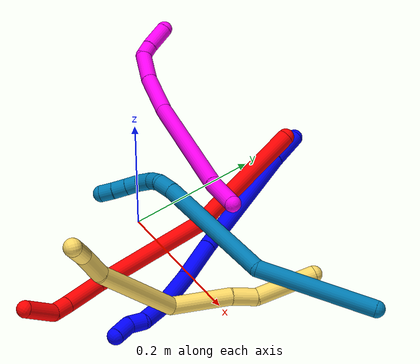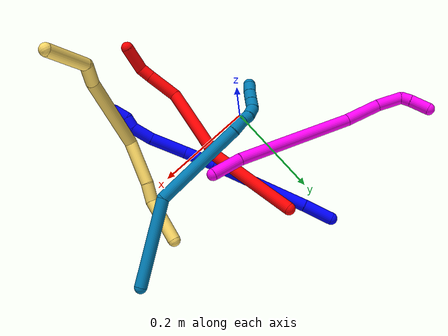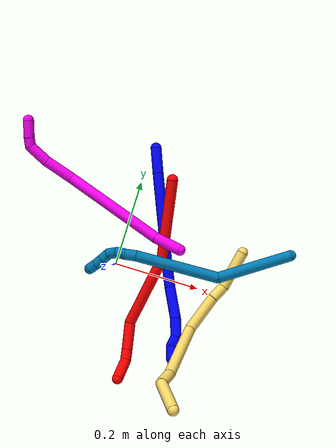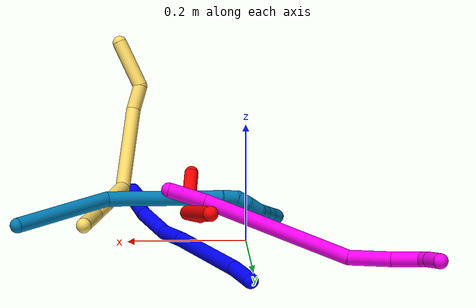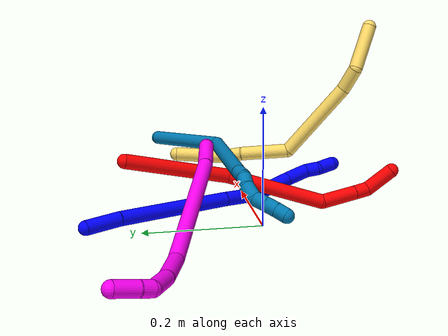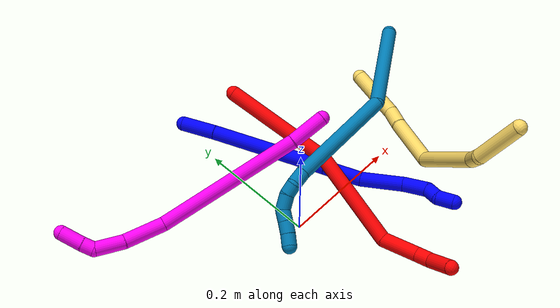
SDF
<sdf version="1.7">
 <world name="default">
  <model name="1">
   <static>0</static>
   <link name="1">
    <collision name="collision-cylinder-e_1_1_4">
     <pose>0.006133 -0.024635 0.015986 0.995188 0.205876 0.112108</pose>
     <geometry><cylinder><radius>0.0125</radius><length>0.060001</length></cylinder></geometry>
     <surface>
      <friction><ode><mu>1.16</mu><mu2>1.16</mu2><slip1>0</slip1><slip2>0</slip2></ode></friction>
      <contact><ode><kp>1e+06</kp><kd>1</kd><max_vel>0</max_vel><min_depth>0.001</min_depth></ode></contact>
     </surface>
    </collision>
    <visual name="visual-cylinder-e_1_1_4">
     <pose>0.006133 -0.024635 0.015986 0.995188 0.205876 0.112108</pose>
     <geometry><cylinder><radius>0.0125</radius><length>0.060001</length></cylinder></geometry>
     <material><ambient>0 0 1 1</ambient></material>
    </visual>
    <collision name="collision-cylinder-e_2_4_5">
     <pose>0.041256 -0.129499 0.086183 0.976568 0.290909 0.155313</pose>
     <geometry><cylinder><radius>0.0125</radius><length>0.20215</length></cylinder></geometry>
     <surface>
      <friction><ode><mu>1.16</mu><mu2>1.16</mu2><slip1>0</slip1><slip2>0</slip2></ode></friction>
      <contact><ode><kp>1e+06</kp><kd>1</kd><max_vel>0</max_vel><min_depth>0.001</min_depth></ode></contact>
     </surface>
    </collision>
    <visual name="visual-cylinder-e_2_4_5">
     <pose>0.041256 -0.129499 0.086183 0.976568 0.290909 0.155313</pose>
     <geometry><cylinder><radius>0.0125</radius><length>0.20215</length></cylinder></geometry>
     <material><ambient>0 0 1 1</ambient></material>
    </visual>
    <collision name="collision-cylinder-e_3_5_6">
     <pose>0.081015 -0.234922 0.158413 0.949907 0.334585 0.173237</pose>
     <geometry><cylinder><radius>0.0125</radius><length>0.065584</length></cylinder></geometry>
     <surface>
      <friction><ode><mu>1.16</mu><mu2>1.16</mu2><slip1>0</slip1><slip2>0</slip2></ode></friction>
      <contact><ode><kp>1e+06</kp><kd>1</kd><max_vel>0</max_vel><min_depth>0.001</min_depth></ode></contact>
     </surface>
    </collision>
    <visual name="visual-cylinder-e_3_5_6">
     <pose>0.081015 -0.234922 0.158413 0.949907 0.334585 0.173237</pose>
     <geometry><cylinder><radius>0.0125</radius><length>0.065584</length></cylinder></geometry>
     <material><ambient>0 0 1 1</ambient></material>
    </visual>
    <collision name="collision-cylinder-e_4_6_7">
     <pose>0.094633 -0.289537 0.199817 0.899228 0.075684 0.036537</pose>
     <geometry><cylinder><radius>0.0125</radius><length>0.075382</length></cylinder></geometry>
     <surface>
      <friction><ode><mu>1.16</mu><mu2>1.16</mu2><slip1>0</slip1><slip2>0</slip2></ode></friction>
      <contact><ode><kp>1e+06</kp><kd>1</kd><max_vel>0</max_vel><min_depth>0.001</min_depth></ode></contact>
     </surface>
    </collision>
    <visual name="visual-cylinder-e_4_6_7">
     <pose>0.094633 -0.289537 0.199817 0.899228 0.075684 0.036537</pose>
     <geometry><cylinder><radius>0.0125</radius><length>0.075382</length></cylinder></geometry>
     <material><ambient>0 0 1 1</ambient></material>
    </visual>
    <collision name="collision-cylinder-e_5_7_8">
     <pose>0.098168 -0.337551 0.233991 1.04496 0.031843 0.018338</pose>
     <geometry><cylinder><radius>0.0125</radius><length>0.043015</length></cylinder></geometry>
     <surface>
      <friction><ode><mu>1.16</mu><mu2>1.16</mu2><slip1>0</slip1><slip2>0</slip2></ode></friction>
      <contact><ode><kp>1e+06</kp><kd>1</kd><max_vel>0</max_vel><min_depth>0.001</min_depth></ode></contact>
     </surface>
    </collision>
    <visual name="visual-cylinder-e_5_7_8">
     <pose>0.098168 -0.337551 0.233991 1.04496 0.031843 0.018338</pose>
     <geometry><cylinder><radius>0.0125</radius><length>0.043015</length></cylinder></geometry>
     <material><ambient>0 0 1 1</ambient></material>
    </visual>
    <collision name="collision-cylinder-e_6_8_9">
     <pose>0.099388 -0.368063 0.245293 1.52793 0.04485 0.042968</pose>
     <geometry><cylinder><radius>0.0125</radius><length>0.023886</length></cylinder></geometry>
     <surface>
      <friction><ode><mu>1.16</mu><mu2>1.16</mu2><slip1>0</slip1><slip2>0</slip2></ode></friction>
      <contact><ode><kp>1e+06</kp><kd>1</kd><max_vel>0</max_vel><min_depth>0.001</min_depth></ode></contact>
     </surface>
    </collision>
    <visual name="visual-cylinder-e_6_8_9">
     <pose>0.099388 -0.368063 0.245293 1.52793 0.04485 0.042968</pose>
     <geometry><cylinder><radius>0.0125</radius><length>0.023886</length></cylinder></geometry>
     <material><ambient>0 0 1 1</ambient></material>
    </visual>
    <collision name="collision-cylinder-e_7_9_2">
     <pose>0.10153 -0.392963 0.253132 1.05685 0.107335 0.062702</pose>
     <geometry><cylinder><radius>0.0125</radius><length>0.029982</length></cylinder></geometry>
     <surface>
      <friction><ode><mu>1.16</mu><mu2>1.16</mu2><slip1>0</slip1><slip2>0</slip2></ode></friction>
      <contact><ode><kp>1e+06</kp><kd>1</kd><max_vel>0</max_vel><min_depth>0.001</min_depth></ode></contact>
     </surface>
    </collision>
    <visual name="visual-cylinder-e_7_9_2">
     <pose>0.10153 -0.392963 0.253132 1.05685 0.107335 0.062702</pose>
     <geometry><cylinder><radius>0.0125</radius><length>0.029982</length></cylinder></geometry>
     <material><ambient>0 0 1 1</ambient></material>
    </visual>
    <collision name="collision-sphere-2">
     <pose>0.103136 -0.405942 0.260459 0 -0 0</pose>
     <geometry><sphere><radius>0.0125</radius></sphere></geometry>
     <surface>
      <friction><ode><mu>1.16</mu><mu2>1.16</mu2><slip1>0</slip1><slip2>0</slip2></ode></friction>
      <contact><ode><kp>1e+06</kp><kd>1</kd><max_vel>0</max_vel><min_depth>0.001</min_depth></ode></contact>
     </surface>
    </collision>
    <visual name="visual-sphere-2">
     <pose>0.103136 -0.405942 0.260459 0 -0 0</pose>
     <geometry><sphere><radius>0.0125</radius></sphere></geometry>
     <material><ambient>0 0 1 1</ambient></material>
    </visual>
    <collision name="collision-sphere-9">
     <pose>0.099924 -0.379983 0.245804 0 -0 0</pose>
     <geometry><sphere><radius>0.0125</radius></sphere></geometry>
     <surface>
      <friction><ode><mu>1.16</mu><mu2>1.16</mu2><slip1>0</slip1><slip2>0</slip2></ode></friction>
      <contact><ode><kp>1e+06</kp><kd>1</kd><max_vel>0</max_vel><min_depth>0.001</min_depth></ode></contact>
     </surface>
    </collision>
    <visual name="visual-sphere-9">
     <pose>0.099924 -0.379983 0.245804 0 -0 0</pose>
     <geometry><sphere><radius>0.0125</radius></sphere></geometry>
     <material><ambient>0 0 1 1</ambient></material>
    </visual>
    <collision name="collision-sphere-4">
     <pose>0.012266 -0.049269 0.031971 0 -0 0</pose>
     <geometry><sphere><radius>0.0125</radius></sphere></geometry>
     <surface>
      <friction><ode><mu>1.16</mu><mu2>1.16</mu2><slip1>0</slip1><slip2>0</slip2></ode></friction>
      <contact><ode><kp>1e+06</kp><kd>1</kd><max_vel>0</max_vel><min_depth>0.001</min_depth></ode></contact>
     </surface>
    </collision>
    <visual name="visual-sphere-4">
     <pose>0.012266 -0.049269 0.031971 0 -0 0</pose>
     <geometry><sphere><radius>0.0125</radius></sphere></geometry>
     <material><ambient>0 0 1 1</ambient></material>
    </visual>
    <collision name="collision-sphere-1">
     <geometry><sphere><radius>0.0125</radius></sphere></geometry>
     <surface>
      <friction><ode><mu>1.16</mu><mu2>1.16</mu2><slip1>0</slip1><slip2>0</slip2></ode></friction>
      <contact><ode><kp>1e+06</kp><kd>1</kd><max_vel>0</max_vel><min_depth>0.001</min_depth></ode></contact>
     </surface>
    </collision>
    <visual name="visual-sphere-1">
     <geometry><sphere><radius>0.0125</radius></sphere></geometry>
     <material><ambient>0 0 1 1</ambient></material>
    </visual>
    <collision name="collision-sphere-8">
     <pose>0.098853 -0.356144 0.244781 0 -0 0</pose>
     <geometry><sphere><radius>0.0125</radius></sphere></geometry>
     <surface>
      <friction><ode><mu>1.16</mu><mu2>1.16</mu2><slip1>0</slip1><slip2>0</slip2></ode></friction>
      <contact><ode><kp>1e+06</kp><kd>1</kd><max_vel>0</max_vel><min_depth>0.001</min_depth></ode></contact>
     </surface>
    </collision>
    <visual name="visual-sphere-8">
     <pose>0.098853 -0.356144 0.244781 0 -0 0</pose>
     <geometry><sphere><radius>0.0125</radius></sphere></geometry>
     <material><ambient>0 0 1 1</ambient></material>
    </visual>
    <collision name="collision-sphere-5">
     <pose>0.070247 -0.209729 0.140394 0 -0 0</pose>
     <geometry><sphere><radius>0.0125</radius></sphere></geometry>
     <surface>
      <friction><ode><mu>1.16</mu><mu2>1.16</mu2><slip1>0</slip1><slip2>0</slip2></ode></friction>
      <contact><ode><kp>1e+06</kp><kd>1</kd><max_vel>0</max_vel><min_depth>0.001</min_depth></ode></contact>
     </surface>
    </collision>
    <visual name="visual-sphere-5">
     <pose>0.070247 -0.209729 0.140394 0 -0 0</pose>
     <geometry><sphere><radius>0.0125</radius></sphere></geometry>
     <material><ambient>0 0 1 1</ambient></material>
    </visual>
    <collision name="collision-sphere-6">
     <pose>0.091783 -0.260115 0.176432 0 -0 0</pose>
     <geometry><sphere><radius>0.0125</radius></sphere></geometry>
     <surface>
      <friction><ode><mu>1.16</mu><mu2>1.16</mu2><slip1>0</slip1><slip2>0</slip2></ode></friction>
      <contact><ode><kp>1e+06</kp><kd>1</kd><max_vel>0</max_vel><min_depth>0.001</min_depth></ode></contact>
     </surface>
    </collision>
    <visual name="visual-sphere-6">
     <pose>0.091783 -0.260115 0.176432 0 -0 0</pose>
     <geometry><sphere><radius>0.0125</radius></sphere></geometry>
     <material><ambient>0 0 1 1</ambient></material>
    </visual>
    <collision name="collision-sphere-7">
     <pose>0.097483 -0.318958 0.223201 0 -0 0</pose>
     <geometry><sphere><radius>0.0125</radius></sphere></geometry>
     <surface>
      <friction><ode><mu>1.16</mu><mu2>1.16</mu2><slip1>0</slip1><slip2>0</slip2></ode></friction>
      <contact><ode><kp>1e+06</kp><kd>1</kd><max_vel>0</max_vel><min_depth>0.001</min_depth></ode></contact>
     </surface>
    </collision>
    <visual name="visual-sphere-7">
     <pose>0.097483 -0.318958 0.223201 0 -0 0</pose>
     <geometry><sphere><radius>0.0125</radius></sphere></geometry>
     <material><ambient>0 0 1 1</ambient></material>
    </visual>
    <inertial>
     <pose>0.061591 -0.199965 0.134693 0 -0 0</pose>
     <mass>0.5</mass>
     <inertia>
      <ixx>0.000875</ixx>
      <ixy>0</ixy>
      <ixz>0</ixz>
      <iyy>0.000548</iyy>
      <iyz>0</iyz>
      <izz>0.000436</izz>
     </inertia>
    </inertial>
   </link>
   <pose>0.00945 0.287372 0.011674 -0.946722 1.28713 -1.14363</pose>
  </model>
  <model name="2">
   <static>0</static>
   <link name="2">
    <collision name="collision-cylinder-e_1_1_4">
     <pose>-0.000107 -0.020913 -0.090584 2.9147 -0.001153 -0.010115</pose>
     <geometry><cylinder><radius>0.0125</radius><length>0.185933</length></cylinder></geometry>
     <surface>
      <friction><ode><mu>1.16</mu><mu2>1.16</mu2><slip1>0</slip1><slip2>0</slip2></ode></friction>
      <contact><ode><kp>1e+06</kp><kd>1</kd><max_vel>0</max_vel><min_depth>0.001</min_depth></ode></contact>
     </surface>
    </collision>
    <visual name="visual-cylinder-e_1_1_4">
     <pose>-0.000107 -0.020913 -0.090584 2.9147 -0.001153 -0.010115</pose>
     <geometry><cylinder><radius>0.0125</radius><length>0.185933</length></cylinder></geometry>
     <material><ambient>1 0 0 1</ambient></material>
    </visual>
    <collision name="collision-cylinder-e_2_4_5">
     <pose>-0.023205 -0.075346 -0.256469 2.72279 -0.272009 -1.14422</pose>
     <geometry><cylinder><radius>0.0125</radius><length>0.171144</length></cylinder></geometry>
     <surface>
      <friction><ode><mu>1.16</mu><mu2>1.16</mu2><slip1>0</slip1><slip2>0</slip2></ode></friction>
      <contact><ode><kp>1e+06</kp><kd>1</kd><max_vel>0</max_vel><min_depth>0.001</min_depth></ode></contact>
     </surface>
    </collision>
    <visual name="visual-cylinder-e_2_4_5">
     <pose>-0.023205 -0.075346 -0.256469 2.72279 -0.272009 -1.14422</pose>
     <geometry><cylinder><radius>0.0125</radius><length>0.171144</length></cylinder></geometry>
     <material><ambient>1 0 0 1</ambient></material>
    </visual>
    <collision name="collision-cylinder-e_3_5_6">
     <pose>-0.037327 -0.123117 -0.358846 2.65709 0.28213 1.0432</pose>
     <geometry><cylinder><radius>0.0125</radius><length>0.06371</length></cylinder></geometry>
     <surface>
      <friction><ode><mu>1.16</mu><mu2>1.16</mu2><slip1>0</slip1><slip2>0</slip2></ode></friction>
      <contact><ode><kp>1e+06</kp><kd>1</kd><max_vel>0</max_vel><min_depth>0.001</min_depth></ode></contact>
     </surface>
    </collision>
    <visual name="visual-cylinder-e_3_5_6">
     <pose>-0.037327 -0.123117 -0.358846 2.65709 0.28213 1.0432</pose>
     <geometry><cylinder><radius>0.0125</radius><length>0.06371</length></cylinder></geometry>
     <material><ambient>1 0 0 1</ambient></material>
    </visual>
    <collision name="collision-cylinder-e_4_6_7">
     <pose>-0.024915 -0.143494 -0.396625 2.62174 0.279724 0.973734</pose>
     <geometry><cylinder><radius>0.0125</radius><length>0.025666</length></cylinder></geometry>
     <surface>
      <friction><ode><mu>1.16</mu><mu2>1.16</mu2><slip1>0</slip1><slip2>0</slip2></ode></friction>
      <contact><ode><kp>1e+06</kp><kd>1</kd><max_vel>0</max_vel><min_depth>0.001</min_depth></ode></contact>
     </surface>
    </collision>
    <visual name="visual-cylinder-e_4_6_7">
     <pose>-0.024915 -0.143494 -0.396625 2.62174 0.279724 0.973734</pose>
     <geometry><cylinder><radius>0.0125</radius><length>0.025666</length></cylinder></geometry>
     <material><ambient>1 0 0 1</ambient></material>
    </visual>
    <collision name="collision-cylinder-e_5_7_2">
     <pose>-0.010989 -0.171705 -0.418345 2.03346 0.398249 0.63056</pose>
     <geometry><cylinder><radius>0.0125</radius><length>0.053547</length></cylinder></geometry>
     <surface>
      <friction><ode><mu>1.16</mu><mu2>1.16</mu2><slip1>0</slip1><slip2>0</slip2></ode></friction>
      <contact><ode><kp>1e+06</kp><kd>1</kd><max_vel>0</max_vel><min_depth>0.001</min_depth></ode></contact>
     </surface>
    </collision>
    <visual name="visual-cylinder-e_5_7_2">
     <pose>-0.010989 -0.171705 -0.418345 2.03346 0.398249 0.63056</pose>
     <geometry><cylinder><radius>0.0125</radius><length>0.053547</length></cylinder></geometry>
     <material><ambient>1 0 0 1</ambient></material>
    </visual>
    <collision name="collision-sphere-2">
     <pose>-0.000606 -0.193789 -0.429359 0 -0 0</pose>
     <geometry><sphere><radius>0.0125</radius></sphere></geometry>
     <surface>
      <friction><ode><mu>1.16</mu><mu2>1.16</mu2><slip1>0</slip1><slip2>0</slip2></ode></friction>
      <contact><ode><kp>1e+06</kp><kd>1</kd><max_vel>0</max_vel><min_depth>0.001</min_depth></ode></contact>
     </surface>
    </collision>
    <visual name="visual-sphere-2">
     <pose>-0.000606 -0.193789 -0.429359 0 -0 0</pose>
     <geometry><sphere><radius>0.0125</radius></sphere></geometry>
     <material><ambient>1 0 0 1</ambient></material>
    </visual>
    <collision name="collision-sphere-7">
     <pose>-0.021372 -0.149621 -0.40733 0 -0 0</pose>
     <geometry><sphere><radius>0.0125</radius></sphere></geometry>
     <surface>
      <friction><ode><mu>1.16</mu><mu2>1.16</mu2><slip1>0</slip1><slip2>0</slip2></ode></friction>
      <contact><ode><kp>1e+06</kp><kd>1</kd><max_vel>0</max_vel><min_depth>0.001</min_depth></ode></contact>
     </surface>
    </collision>
    <visual name="visual-sphere-7">
     <pose>-0.021372 -0.149621 -0.40733 0 -0 0</pose>
     <geometry><sphere><radius>0.0125</radius></sphere></geometry>
     <material><ambient>1 0 0 1</ambient></material>
    </visual>
    <collision name="collision-sphere-6">
     <pose>-0.028458 -0.137367 -0.38592 0 -0 0</pose>
     <geometry><sphere><radius>0.0125</radius></sphere></geometry>
     <surface>
      <friction><ode><mu>1.16</mu><mu2>1.16</mu2><slip1>0</slip1><slip2>0</slip2></ode></friction>
      <contact><ode><kp>1e+06</kp><kd>1</kd><max_vel>0</max_vel><min_depth>0.001</min_depth></ode></contact>
     </surface>
    </collision>
    <visual name="visual-sphere-6">
     <pose>-0.028458 -0.137367 -0.38592 0 -0 0</pose>
     <geometry><sphere><radius>0.0125</radius></sphere></geometry>
     <material><ambient>1 0 0 1</ambient></material>
    </visual>
    <collision name="collision-sphere-5">
     <pose>-0.046195 -0.108866 -0.331772 0 -0 0</pose>
     <geometry><sphere><radius>0.0125</radius></sphere></geometry>
     <surface>
      <friction><ode><mu>1.16</mu><mu2>1.16</mu2><slip1>0</slip1><slip2>0</slip2></ode></friction>
      <contact><ode><kp>1e+06</kp><kd>1</kd><max_vel>0</max_vel><min_depth>0.001</min_depth></ode></contact>
     </surface>
    </collision>
    <visual name="visual-sphere-5">
     <pose>-0.046195 -0.108866 -0.331772 0 -0 0</pose>
     <geometry><sphere><radius>0.0125</radius></sphere></geometry>
     <material><ambient>1 0 0 1</ambient></material>
    </visual>
    <collision name="collision-sphere-1">
     <geometry><sphere><radius>0.0125</radius></sphere></geometry>
     <surface>
      <friction><ode><mu>1.16</mu><mu2>1.16</mu2><slip1>0</slip1><slip2>0</slip2></ode></friction>
      <contact><ode><kp>1e+06</kp><kd>1</kd><max_vel>0</max_vel><min_depth>0.001</min_depth></ode></contact>
     </surface>
    </collision>
    <visual name="visual-sphere-1">
     <geometry><sphere><radius>0.0125</radius></sphere></geometry>
     <material><ambient>1 0 0 1</ambient></material>
    </visual>
    <collision name="collision-sphere-4">
     <pose>-0.000214 -0.041827 -0.181167 0 -0 0</pose>
     <geometry><sphere><radius>0.0125</radius></sphere></geometry>
     <surface>
      <friction><ode><mu>1.16</mu><mu2>1.16</mu2><slip1>0</slip1><slip2>0</slip2></ode></friction>
      <contact><ode><kp>1e+06</kp><kd>1</kd><max_vel>0</max_vel><min_depth>0.001</min_depth></ode></contact>
     </surface>
    </collision>
    <visual name="visual-sphere-4">
     <pose>-0.000214 -0.041827 -0.181167 0 -0 0</pose>
     <geometry><sphere><radius>0.0125</radius></sphere></geometry>
     <material><ambient>1 0 0 1</ambient></material>
    </visual>
    <inertial>
     <pose>-0.015194 -0.075009 -0.232357 0 -0 0</pose>
     <mass>0.5</mass>
     <inertia>
      <ixx>0.000388</ixx>
      <ixy>0</ixy>
      <ixz>0</ixz>
      <iyy>-0.001021</iyy>
      <iyz>0</iyz>
      <izz>0.000381</izz>
     </inertia>
    </inertial>
   </link>
   <pose>0.069031 0.219676 0.103029 -1.01887 -0.761992 -0.056826</pose>
  </model>
  <model name="5">
   <static>0</static>
   <link name="5">
    <collision name="collision-cylinder-e_1_1_4">
     <pose>0.001496 0.006853 -0.04429 -2.98809 0.033372 -0.427365</pose>
     <geometry><cylinder><radius>0.0125</radius><length>0.089683</length></cylinder></geometry>
     <surface>
      <friction><ode><mu>1.16</mu><mu2>1.16</mu2><slip1>0</slip1><slip2>0</slip2></ode></friction>
      <contact><ode><kp>1e+06</kp><kd>1</kd><max_vel>0</max_vel><min_depth>0.001</min_depth></ode></contact>
     </surface>
    </collision>
    <visual name="visual-cylinder-e_1_1_4">
     <pose>0.001496 0.006853 -0.04429 -2.98809 0.033372 -0.427365</pose>
     <geometry><cylinder><radius>0.0125</radius><length>0.089683</length></cylinder></geometry>
     <material><ambient>1 0.858824 0.4 1</ambient></material>
    </visual>
    <collision name="collision-cylinder-e_2_4_5">
     <pose>-0.001739 0.011832 -0.106187 3.03563 -0.261107 -2.37391</pose>
     <geometry><cylinder><radius>0.0125</radius><length>0.036656</length></cylinder></geometry>
     <surface>
      <friction><ode><mu>1.16</mu><mu2>1.16</mu2><slip1>0</slip1><slip2>0</slip2></ode></friction>
      <contact><ode><kp>1e+06</kp><kd>1</kd><max_vel>0</max_vel><min_depth>0.001</min_depth></ode></contact>
     </surface>
    </collision>
    <visual name="visual-cylinder-e_2_4_5">
     <pose>-0.001739 0.011832 -0.106187 3.03563 -0.261107 -2.37391</pose>
     <geometry><cylinder><radius>0.0125</radius><length>0.036656</length></cylinder></geometry>
     <material><ambient>1 0.858824 0.4 1</ambient></material>
    </visual>
    <collision name="collision-cylinder-e_3_5_6">
     <pose>-0.011776 0.010199 -0.167255 -3.13608 -0.121477 3.05097</pose>
     <geometry><cylinder><radius>0.0125</radius><length>0.087568</length></cylinder></geometry>
     <surface>
      <friction><ode><mu>1.16</mu><mu2>1.16</mu2><slip1>0</slip1><slip2>0</slip2></ode></friction>
      <contact><ode><kp>1e+06</kp><kd>1</kd><max_vel>0</max_vel><min_depth>0.001</min_depth></ode></contact>
     </surface>
    </collision>
    <visual name="visual-cylinder-e_3_5_6">
     <pose>-0.011776 0.010199 -0.167255 -3.13608 -0.121477 3.05097</pose>
     <geometry><cylinder><radius>0.0125</radius><length>0.087568</length></cylinder></geometry>
     <material><ambient>1 0.858824 0.4 1</ambient></material>
    </visual>
    <collision name="collision-cylinder-e_4_6_7">
     <pose>-0.020255 -0.042124 -0.26682 2.38878 -0.04125 -0.104284</pose>
     <geometry><cylinder><radius>0.0125</radius><length>0.153892</length></cylinder></geometry>
     <surface>
      <friction><ode><mu>1.16</mu><mu2>1.16</mu2><slip1>0</slip1><slip2>0</slip2></ode></friction>
      <contact><ode><kp>1e+06</kp><kd>1</kd><max_vel>0</max_vel><min_depth>0.001</min_depth></ode></contact>
     </surface>
    </collision>
    <visual name="visual-cylinder-e_4_6_7">
     <pose>-0.020255 -0.042124 -0.26682 2.38878 -0.04125 -0.104284</pose>
     <geometry><cylinder><radius>0.0125</radius><length>0.153892</length></cylinder></geometry>
     <material><ambient>1 0.858824 0.4 1</ambient></material>
    </visual>
    <collision name="collision-cylinder-e_5_7_8">
     <pose>-0.029014 -0.112536 -0.335272 2.17593 -0.251937 -0.474077</pose>
     <geometry><cylinder><radius>0.0125</radius><length>0.044821</length></cylinder></geometry>
     <surface>
      <friction><ode><mu>1.16</mu><mu2>1.16</mu2><slip1>0</slip1><slip2>0</slip2></ode></friction>
      <contact><ode><kp>1e+06</kp><kd>1</kd><max_vel>0</max_vel><min_depth>0.001</min_depth></ode></contact>
     </surface>
    </collision>
    <visual name="visual-cylinder-e_5_7_8">
     <pose>-0.029014 -0.112536 -0.335272 2.17593 -0.251937 -0.474077</pose>
     <geometry><cylinder><radius>0.0125</radius><length>0.044821</length></cylinder></geometry>
     <material><ambient>1 0.858824 0.4 1</ambient></material>
    </visual>
    <collision name="collision-cylinder-e_6_8_2">
     <pose>-0.016301 -0.166251 -0.364574 2.01242 0.43219 0.667288</pose>
     <geometry><cylinder><radius>0.0125</radius><length>0.08738</length></cylinder></geometry>
     <surface>
      <friction><ode><mu>1.16</mu><mu2>1.16</mu2><slip1>0</slip1><slip2>0</slip2></ode></friction>
      <contact><ode><kp>1e+06</kp><kd>1</kd><max_vel>0</max_vel><min_depth>0.001</min_depth></ode></contact>
     </surface>
    </collision>
    <visual name="visual-cylinder-e_6_8_2">
     <pose>-0.016301 -0.166251 -0.364574 2.01242 0.43219 0.667288</pose>
     <geometry><cylinder><radius>0.0125</radius><length>0.08738</length></cylinder></geometry>
     <material><ambient>1 0.858824 0.4 1</ambient></material>
    </visual>
    <collision name="collision-sphere-2">
     <pose>0.001999 -0.202118 -0.381531 0 -0 0</pose>
     <geometry><sphere><radius>0.0125</radius></sphere></geometry>
     <surface>
      <friction><ode><mu>1.16</mu><mu2>1.16</mu2><slip1>0</slip1><slip2>0</slip2></ode></friction>
      <contact><ode><kp>1e+06</kp><kd>1</kd><max_vel>0</max_vel><min_depth>0.001</min_depth></ode></contact>
     </surface>
    </collision>
    <visual name="visual-sphere-2">
     <pose>0.001999 -0.202118 -0.381531 0 -0 0</pose>
     <geometry><sphere><radius>0.0125</radius></sphere></geometry>
     <material><ambient>1 0.858824 0.4 1</ambient></material>
    </visual>
    <collision name="collision-sphere-4">
     <pose>0.002992 0.013705 -0.088579 0 -0 0</pose>
     <geometry><sphere><radius>0.0125</radius></sphere></geometry>
     <surface>
      <friction><ode><mu>1.16</mu><mu2>1.16</mu2><slip1>0</slip1><slip2>0</slip2></ode></friction>
      <contact><ode><kp>1e+06</kp><kd>1</kd><max_vel>0</max_vel><min_depth>0.001</min_depth></ode></contact>
     </surface>
    </collision>
    <visual name="visual-sphere-4">
     <pose>0.002992 0.013705 -0.088579 0 -0 0</pose>
     <geometry><sphere><radius>0.0125</radius></sphere></geometry>
     <material><ambient>1 0.858824 0.4 1</ambient></material>
    </visual>
    <collision name="collision-sphere-1">
     <geometry><sphere><radius>0.0125</radius></sphere></geometry>
     <surface>
      <friction><ode><mu>1.16</mu><mu2>1.16</mu2><slip1>0</slip1><slip2>0</slip2></ode></friction>
      <contact><ode><kp>1e+06</kp><kd>1</kd><max_vel>0</max_vel><min_depth>0.001</min_depth></ode></contact>
     </surface>
    </collision>
    <visual name="visual-sphere-1">
     <geometry><sphere><radius>0.0125</radius></sphere></geometry>
     <material><ambient>1 0.858824 0.4 1</ambient></material>
    </visual>
    <collision name="collision-sphere-8">
     <pose>-0.034601 -0.130385 -0.347618 0 -0 0</pose>
     <geometry><sphere><radius>0.0125</radius></sphere></geometry>
     <surface>
      <friction><ode><mu>1.16</mu><mu2>1.16</mu2><slip1>0</slip1><slip2>0</slip2></ode></friction>
      <contact><ode><kp>1e+06</kp><kd>1</kd><max_vel>0</max_vel><min_depth>0.001</min_depth></ode></contact>
     </surface>
    </collision>
    <visual name="visual-sphere-8">
     <pose>-0.034601 -0.130385 -0.347618 0 -0 0</pose>
     <geometry><sphere><radius>0.0125</radius></sphere></geometry>
     <material><ambient>1 0.858824 0.4 1</ambient></material>
    </visual>
    <collision name="collision-sphere-5">
     <pose>-0.00647 0.00996 -0.123794 0 -0 0</pose>
     <geometry><sphere><radius>0.0125</radius></sphere></geometry>
     <surface>
      <friction><ode><mu>1.16</mu><mu2>1.16</mu2><slip1>0</slip1><slip2>0</slip2></ode></friction>
      <contact><ode><kp>1e+06</kp><kd>1</kd><max_vel>0</max_vel><min_depth>0.001</min_depth></ode></contact>
     </surface>
    </collision>
    <visual name="visual-sphere-5">
     <pose>-0.00647 0.00996 -0.123794 0 -0 0</pose>
     <geometry><sphere><radius>0.0125</radius></sphere></geometry>
     <material><ambient>1 0.858824 0.4 1</ambient></material>
    </visual>
    <collision name="collision-sphere-6">
     <pose>-0.017082 0.010439 -0.210715 0 -0 0</pose>
     <geometry><sphere><radius>0.0125</radius></sphere></geometry>
     <surface>
      <friction><ode><mu>1.16</mu><mu2>1.16</mu2><slip1>0</slip1><slip2>0</slip2></ode></friction>
      <contact><ode><kp>1e+06</kp><kd>1</kd><max_vel>0</max_vel><min_depth>0.001</min_depth></ode></contact>
     </surface>
    </collision>
    <visual name="visual-sphere-6">
     <pose>-0.017082 0.010439 -0.210715 0 -0 0</pose>
     <geometry><sphere><radius>0.0125</radius></sphere></geometry>
     <material><ambient>1 0.858824 0.4 1</ambient></material>
    </visual>
    <collision name="collision-sphere-7">
     <pose>-0.023428 -0.094687 -0.322926 0 -0 0</pose>
     <geometry><sphere><radius>0.0125</radius></sphere></geometry>
     <surface>
      <friction><ode><mu>1.16</mu><mu2>1.16</mu2><slip1>0</slip1><slip2>0</slip2></ode></friction>
      <contact><ode><kp>1e+06</kp><kd>1</kd><max_vel>0</max_vel><min_depth>0.001</min_depth></ode></contact>
     </surface>
    </collision>
    <visual name="visual-sphere-7">
     <pose>-0.023428 -0.094687 -0.322926 0 -0 0</pose>
     <geometry><sphere><radius>0.0125</radius></sphere></geometry>
     <material><ambient>1 0.858824 0.4 1</ambient></material>
    </visual>
    <inertial>
     <pose>-0.013605 -0.048224 -0.220912 0 -0 0</pose>
     <mass>0.5</mass>
     <inertia>
      <ixx>0.000325</ixx>
      <ixy>0</ixy>
      <ixz>0</ixz>
      <iyy>-0.000271</iyy>
      <iyz>0</iyz>
      <izz>0.000225</izz>
     </inertia>
    </inertial>
   </link>
   <pose>0.271414 0.111565 0.058491 -1.67818 0.079137 -0.231218</pose>
  </model>
  <model name="9">
   <static>0</static>
   <link name="9">
    <collision name="collision-cylinder-e_1_1_4">
     <pose>-0.034688 0.000833 0.080318 -0.010376 -0.407661 0.002145</pose>
     <geometry><cylinder><radius>0.0125</radius><length>0.174985</length></cylinder></geometry>
     <surface>
      <friction><ode><mu>1.16</mu><mu2>1.16</mu2><slip1>0</slip1><slip2>0</slip2></ode></friction>
      <contact><ode><kp>1e+06</kp><kd>1</kd><max_vel>0</max_vel><min_depth>0.001</min_depth></ode></contact>
     </surface>
    </collision>
    <visual name="visual-cylinder-e_1_1_4">
     <pose>-0.034688 0.000833 0.080318 -0.010376 -0.407661 0.002145</pose>
     <geometry><cylinder><radius>0.0125</radius><length>0.174985</length></cylinder></geometry>
     <material><ambient>0 0.490196 0.709804 1</ambient></material>
    </visual>
    <collision name="collision-cylinder-e_2_4_5">
     <pose>-0.146368 0.017922 0.215555 -0.287774 -0.931215 0.145343</pose>
     <geometry><cylinder><radius>0.0125</radius><length>0.191918</length></cylinder></geometry>
     <surface>
      <friction><ode><mu>1.16</mu><mu2>1.16</mu2><slip1>0</slip1><slip2>0</slip2></ode></friction>
      <contact><ode><kp>1e+06</kp><kd>1</kd><max_vel>0</max_vel><min_depth>0.001</min_depth></ode></contact>
     </surface>
    </collision>
    <visual name="visual-cylinder-e_2_4_5">
     <pose>-0.146368 0.017922 0.215555 -0.287774 -0.931215 0.145343</pose>
     <geometry><cylinder><radius>0.0125</radius><length>0.191918</length></cylinder></geometry>
     <material><ambient>0 0.490196 0.709804 1</ambient></material>
    </visual>
    <collision name="collision-cylinder-e_3_5_6">
     <pose>-0.23304 0.03506 0.278697 -0.106909 -0.863808 0.049315</pose>
     <geometry><cylinder><radius>0.0125</radius><length>0.025462</length></cylinder></geometry>
     <surface>
      <friction><ode><mu>1.16</mu><mu2>1.16</mu2><slip1>0</slip1><slip2>0</slip2></ode></friction>
      <contact><ode><kp>1e+06</kp><kd>1</kd><max_vel>0</max_vel><min_depth>0.001</min_depth></ode></contact>
     </surface>
    </collision>
    <visual name="visual-cylinder-e_3_5_6">
     <pose>-0.23304 0.03506 0.278697 -0.106909 -0.863808 0.049315</pose>
     <geometry><cylinder><radius>0.0125</radius><length>0.025462</length></cylinder></geometry>
     <material><ambient>0 0.490196 0.709804 1</ambient></material>
    </visual>
    <collision name="collision-cylinder-e_4_6_7">
     <pose>-0.251573 0.032844 0.290704 0.686053 -1.06605 -0.415346</pose>
     <geometry><cylinder><radius>0.0125</radius><length>0.02023</length></cylinder></geometry>
     <surface>
      <friction><ode><mu>1.16</mu><mu2>1.16</mu2><slip1>0</slip1><slip2>0</slip2></ode></friction>
      <contact><ode><kp>1e+06</kp><kd>1</kd><max_vel>0</max_vel><min_depth>0.001</min_depth></ode></contact>
     </surface>
    </collision>
    <visual name="visual-cylinder-e_4_6_7">
     <pose>-0.251573 0.032844 0.290704 0.686053 -1.06605 -0.415346</pose>
     <geometry><cylinder><radius>0.0125</radius><length>0.02023</length></cylinder></geometry>
     <material><ambient>0 0.490196 0.709804 1</ambient></material>
    </visual>
    <collision name="collision-cylinder-e_5_7_8">
     <pose>-0.269426 0.022916 0.301259 0.789724 -0.752228 -0.326236</pose>
     <geometry><cylinder><radius>0.0125</radius><length>0.02634</length></cylinder></geometry>
     <surface>
      <friction><ode><mu>1.16</mu><mu2>1.16</mu2><slip1>0</slip1><slip2>0</slip2></ode></friction>
      <contact><ode><kp>1e+06</kp><kd>1</kd><max_vel>0</max_vel><min_depth>0.001</min_depth></ode></contact>
     </surface>
    </collision>
    <visual name="visual-cylinder-e_5_7_8">
     <pose>-0.269426 0.022916 0.301259 0.789724 -0.752228 -0.326236</pose>
     <geometry><cylinder><radius>0.0125</radius><length>0.02634</length></cylinder></geometry>
     <material><ambient>0 0.490196 0.709804 1</ambient></material>
    </visual>
    <collision name="collision-cylinder-e_6_8_9">
     <pose>-0.280601 0.010524 0.316123 0.602149 -0.218136 -0.067978</pose>
     <geometry><cylinder><radius>0.0125</radius><length>0.020119</length></cylinder></geometry>
     <surface>
      <friction><ode><mu>1.16</mu><mu2>1.16</mu2><slip1>0</slip1><slip2>0</slip2></ode></friction>
      <contact><ode><kp>1e+06</kp><kd>1</kd><max_vel>0</max_vel><min_depth>0.001</min_depth></ode></contact>
     </surface>
    </collision>
    <visual name="visual-cylinder-e_6_8_9">
     <pose>-0.280601 0.010524 0.316123 0.602149 -0.218136 -0.067978</pose>
     <geometry><cylinder><radius>0.0125</radius><length>0.020119</length></cylinder></geometry>
     <material><ambient>0 0.490196 0.709804 1</ambient></material>
    </visual>
    <collision name="collision-cylinder-e_7_9_10">
     <pose>-0.285278 -0.000735 0.332498 0.602516 -0.243728 -0.07607</pose>
     <geometry><cylinder><radius>0.0125</radius><length>0.020714</length></cylinder></geometry>
     <surface>
      <friction><ode><mu>1.16</mu><mu2>1.16</mu2><slip1>0</slip1><slip2>0</slip2></ode></friction>
      <contact><ode><kp>1e+06</kp><kd>1</kd><max_vel>0</max_vel><min_depth>0.001</min_depth></ode></contact>
     </surface>
    </collision>
    <visual name="visual-cylinder-e_7_9_10">
     <pose>-0.285278 -0.000735 0.332498 0.602516 -0.243728 -0.07607</pose>
     <geometry><cylinder><radius>0.0125</radius><length>0.020714</length></cylinder></geometry>
     <material><ambient>0 0.490196 0.709804 1</ambient></material>
    </visual>
    <collision name="collision-cylinder-e_8_10_2">
     <pose>-0.290993 -0.011736 0.348769 0.586072 -0.32352 -0.098394</pose>
     <geometry><cylinder><radius>0.0125</radius><length>0.02023</length></cylinder></geometry>
     <surface>
      <friction><ode><mu>1.16</mu><mu2>1.16</mu2><slip1>0</slip1><slip2>0</slip2></ode></friction>
      <contact><ode><kp>1e+06</kp><kd>1</kd><max_vel>0</max_vel><min_depth>0.001</min_depth></ode></contact>
     </surface>
    </collision>
    <visual name="visual-cylinder-e_8_10_2">
     <pose>-0.290993 -0.011736 0.348769 0.586072 -0.32352 -0.098394</pose>
     <geometry><cylinder><radius>0.0125</radius><length>0.02023</length></cylinder></geometry>
     <material><ambient>0 0.490196 0.709804 1</ambient></material>
    </visual>
    <collision name="collision-sphere-2">
     <pose>-0.294208 -0.01704 0.356759 0 -0 0</pose>
     <geometry><sphere><radius>0.0125</radius></sphere></geometry>
     <surface>
      <friction><ode><mu>1.16</mu><mu2>1.16</mu2><slip1>0</slip1><slip2>0</slip2></ode></friction>
      <contact><ode><kp>1e+06</kp><kd>1</kd><max_vel>0</max_vel><min_depth>0.001</min_depth></ode></contact>
     </surface>
    </collision>
    <visual name="visual-sphere-2">
     <pose>-0.294208 -0.01704 0.356759 0 -0 0</pose>
     <geometry><sphere><radius>0.0125</radius></sphere></geometry>
     <material><ambient>0 0.490196 0.709804 1</ambient></material>
    </visual>
    <collision name="collision-sphere-10">
     <pose>-0.287777 -0.006431 0.340779 0 -0 0</pose>
     <geometry><sphere><radius>0.0125</radius></sphere></geometry>
     <surface>
      <friction><ode><mu>1.16</mu><mu2>1.16</mu2><slip1>0</slip1><slip2>0</slip2></ode></friction>
      <contact><ode><kp>1e+06</kp><kd>1</kd><max_vel>0</max_vel><min_depth>0.001</min_depth></ode></contact>
     </surface>
    </collision>
    <visual name="visual-sphere-10">
     <pose>-0.287777 -0.006431 0.340779 0 -0 0</pose>
     <geometry><sphere><radius>0.0125</radius></sphere></geometry>
     <material><ambient>0 0.490196 0.709804 1</ambient></material>
    </visual>
    <collision name="collision-sphere-9">
     <pose>-0.282778 0.004961 0.324217 0 -0 0</pose>
     <geometry><sphere><radius>0.0125</radius></sphere></geometry>
     <surface>
      <friction><ode><mu>1.16</mu><mu2>1.16</mu2><slip1>0</slip1><slip2>0</slip2></ode></friction>
      <contact><ode><kp>1e+06</kp><kd>1</kd><max_vel>0</max_vel><min_depth>0.001</min_depth></ode></contact>
     </surface>
    </collision>
    <visual name="visual-sphere-9">
     <pose>-0.282778 0.004961 0.324217 0 -0 0</pose>
     <geometry><sphere><radius>0.0125</radius></sphere></geometry>
     <material><ambient>0 0.490196 0.709804 1</ambient></material>
    </visual>
    <collision name="collision-sphere-4">
     <pose>-0.069375 0.001667 0.160637 0 -0 0</pose>
     <geometry><sphere><radius>0.0125</radius></sphere></geometry>
     <surface>
      <friction><ode><mu>1.16</mu><mu2>1.16</mu2><slip1>0</slip1><slip2>0</slip2></ode></friction>
      <contact><ode><kp>1e+06</kp><kd>1</kd><max_vel>0</max_vel><min_depth>0.001</min_depth></ode></contact>
     </surface>
    </collision>
    <visual name="visual-sphere-4">
     <pose>-0.069375 0.001667 0.160637 0 -0 0</pose>
     <geometry><sphere><radius>0.0125</radius></sphere></geometry>
     <material><ambient>0 0.490196 0.709804 1</ambient></material>
    </visual>
    <collision name="collision-sphere-1">
     <geometry><sphere><radius>0.0125</radius></sphere></geometry>
     <surface>
      <friction><ode><mu>1.16</mu><mu2>1.16</mu2><slip1>0</slip1><slip2>0</slip2></ode></friction>
      <contact><ode><kp>1e+06</kp><kd>1</kd><max_vel>0</max_vel><min_depth>0.001</min_depth></ode></contact>
     </surface>
    </collision>
    <visual name="visual-sphere-1">
     <geometry><sphere><radius>0.0125</radius></sphere></geometry>
     <material><ambient>0 0.490196 0.709804 1</ambient></material>
    </visual>
    <collision name="collision-sphere-8">
     <pose>-0.278424 0.016087 0.308029 0 -0 0</pose>
     <geometry><sphere><radius>0.0125</radius></sphere></geometry>
     <surface>
      <friction><ode><mu>1.16</mu><mu2>1.16</mu2><slip1>0</slip1><slip2>0</slip2></ode></friction>
      <contact><ode><kp>1e+06</kp><kd>1</kd><max_vel>0</max_vel><min_depth>0.001</min_depth></ode></contact>
     </surface>
    </collision>
    <visual name="visual-sphere-8">
     <pose>-0.278424 0.016087 0.308029 0 -0 0</pose>
     <geometry><sphere><radius>0.0125</radius></sphere></geometry>
     <material><ambient>0 0.490196 0.709804 1</ambient></material>
    </visual>
    <collision name="collision-sphere-5">
     <pose>-0.22336 0.034178 0.270474 0 -0 0</pose>
     <geometry><sphere><radius>0.0125</radius></sphere></geometry>
     <surface>
      <friction><ode><mu>1.16</mu><mu2>1.16</mu2><slip1>0</slip1><slip2>0</slip2></ode></friction>
      <contact><ode><kp>1e+06</kp><kd>1</kd><max_vel>0</max_vel><min_depth>0.001</min_depth></ode></contact>
     </surface>
    </collision>
    <visual name="visual-sphere-5">
     <pose>-0.22336 0.034178 0.270474 0 -0 0</pose>
     <geometry><sphere><radius>0.0125</radius></sphere></geometry>
     <material><ambient>0 0.490196 0.709804 1</ambient></material>
    </visual>
    <collision name="collision-sphere-6">
     <pose>-0.24272 0.035942 0.286919 0 -0 0</pose>
     <geometry><sphere><radius>0.0125</radius></sphere></geometry>
     <surface>
      <friction><ode><mu>1.16</mu><mu2>1.16</mu2><slip1>0</slip1><slip2>0</slip2></ode></friction>
      <contact><ode><kp>1e+06</kp><kd>1</kd><max_vel>0</max_vel><min_depth>0.001</min_depth></ode></contact>
     </surface>
    </collision>
    <visual name="visual-sphere-6">
     <pose>-0.24272 0.035942 0.286919 0 -0 0</pose>
     <geometry><sphere><radius>0.0125</radius></sphere></geometry>
     <material><ambient>0 0.490196 0.709804 1</ambient></material>
    </visual>
    <collision name="collision-sphere-7">
     <pose>-0.260427 0.029745 0.294488 0 -0 0</pose>
     <geometry><sphere><radius>0.0125</radius></sphere></geometry>
     <surface>
      <friction><ode><mu>1.16</mu><mu2>1.16</mu2><slip1>0</slip1><slip2>0</slip2></ode></friction>
      <contact><ode><kp>1e+06</kp><kd>1</kd><max_vel>0</max_vel><min_depth>0.001</min_depth></ode></contact>
     </surface>
    </collision>
    <visual name="visual-sphere-7">
     <pose>-0.260427 0.029745 0.294488 0 -0 0</pose>
     <geometry><sphere><radius>0.0125</radius></sphere></geometry>
     <material><ambient>0 0.490196 0.709804 1</ambient></material>
    </visual>
    <inertial>
     <pose>-0.139444 0.011411 0.193279 0 -0 0</pose>
     <mass>0.5</mass>
     <inertia>
      <ixx>0.000805</ixx>
      <ixy>0</ixy>
      <ixz>0</ixz>
      <iyy>0.001099</iyy>
      <iyz>0</iyz>
      <izz>0.000591</izz>
     </inertia>
    </inertial>
   </link>
   <pose>0.377426 0.137348 0.066625 1.26803 -0.405402 -0.480158</pose>
  </model>
  <model name="10">
   <static>0</static>
   <link name="10">
    <collision name="collision-cylinder-e_1_1_4">
     <pose>-0.016514 0.001005 0.026579 -0.037781 -0.555633 0.010776</pose>
     <geometry><cylinder><radius>0.0125</radius><length>0.062615</length></cylinder></geometry>
     <surface>
      <friction><ode><mu>1.16</mu><mu2>1.16</mu2><slip1>0</slip1><slip2>0</slip2></ode></friction>
      <contact><ode><kp>1e+06</kp><kd>1</kd><max_vel>0</max_vel><min_depth>0.001</min_depth></ode></contact>
     </surface>
    </collision>
    <visual name="visual-cylinder-e_1_1_4">
     <pose>-0.016514 0.001005 0.026579 -0.037781 -0.555633 0.010776</pose>
     <geometry><cylinder><radius>0.0125</radius><length>0.062615</length></cylinder></geometry>
     <material><ambient>1 0 0.964706 1</ambient></material>
    </visual>
    <collision name="collision-cylinder-e_2_4_5">
     <pose>-0.097765 -0.012017 0.161366 0.128907 -0.535475 -0.035408</pose>
     <geometry><cylinder><radius>0.0125</radius><length>0.253746</length></cylinder></geometry>
     <surface>
      <friction><ode><mu>1.16</mu><mu2>1.16</mu2><slip1>0</slip1><slip2>0</slip2></ode></friction>
      <contact><ode><kp>1e+06</kp><kd>1</kd><max_vel>0</max_vel><min_depth>0.001</min_depth></ode></contact>
     </surface>
    </collision>
    <visual name="visual-cylinder-e_2_4_5">
     <pose>-0.097765 -0.012017 0.161366 0.128907 -0.535475 -0.035408</pose>
     <geometry><cylinder><radius>0.0125</radius><length>0.253746</length></cylinder></geometry>
     <material><ambient>1 0 0.964706 1</ambient></material>
    </visual>
    <collision name="collision-cylinder-e_3_5_6">
     <pose>-0.189996 -0.027658 0.292726 0.069621 -0.869761 -0.032352</pose>
     <geometry><cylinder><radius>0.0125</radius><length>0.071958</length></cylinder></geometry>
     <surface>
      <friction><ode><mu>1.16</mu><mu2>1.16</mu2><slip1>0</slip1><slip2>0</slip2></ode></friction>
      <contact><ode><kp>1e+06</kp><kd>1</kd><max_vel>0</max_vel><min_depth>0.001</min_depth></ode></contact>
     </surface>
    </collision>
    <visual name="visual-cylinder-e_3_5_6">
     <pose>-0.189996 -0.027658 0.292726 0.069621 -0.869761 -0.032352</pose>
     <geometry><cylinder><radius>0.0125</radius><length>0.071958</length></cylinder></geometry>
     <material><ambient>1 0 0.964706 1</ambient></material>
    </visual>
    <collision name="collision-cylinder-e_4_6_7">
     <pose>-0.238194 -0.033934 0.330024 0.318258 -0.947104 -0.16411</pose>
     <geometry><cylinder><radius>0.0125</radius><length>0.051011</length></cylinder></geometry>
     <surface>
      <friction><ode><mu>1.16</mu><mu2>1.16</mu2><slip1>0</slip1><slip2>0</slip2></ode></friction>
      <contact><ode><kp>1e+06</kp><kd>1</kd><max_vel>0</max_vel><min_depth>0.001</min_depth></ode></contact>
     </surface>
    </collision>
    <visual name="visual-cylinder-e_4_6_7">
     <pose>-0.238194 -0.033934 0.330024 0.318258 -0.947104 -0.16411</pose>
     <geometry><cylinder><radius>0.0125</radius><length>0.051011</length></cylinder></geometry>
     <material><ambient>1 0 0.964706 1</ambient></material>
    </visual>
    <collision name="collision-cylinder-e_5_7_8">
     <pose>-0.265745 -0.046249 0.34585 1.35494 -0.718267 -0.586608</pose>
     <geometry><cylinder><radius>0.0125</radius><length>0.020812</length></cylinder></geometry>
     <surface>
      <friction><ode><mu>1.16</mu><mu2>1.16</mu2><slip1>0</slip1><slip2>0</slip2></ode></friction>
      <contact><ode><kp>1e+06</kp><kd>1</kd><max_vel>0</max_vel><min_depth>0.001</min_depth></ode></contact>
     </surface>
    </collision>
    <visual name="visual-cylinder-e_5_7_8">
     <pose>-0.265745 -0.046249 0.34585 1.35494 -0.718267 -0.586608</pose>
     <geometry><cylinder><radius>0.0125</radius><length>0.020812</length></cylinder></geometry>
     <material><ambient>1 0 0.964706 1</ambient></material>
    </visual>
    <collision name="collision-cylinder-e_6_8_2">
     <pose>-0.284116 -0.069952 0.350134 1.40989 -0.616515 -0.529087</pose>
     <geometry><cylinder><radius>0.0125</radius><length>0.039858</length></cylinder></geometry>
     <surface>
      <friction><ode><mu>1.16</mu><mu2>1.16</mu2><slip1>0</slip1><slip2>0</slip2></ode></friction>
      <contact><ode><kp>1e+06</kp><kd>1</kd><max_vel>0</max_vel><min_depth>0.001</min_depth></ode></contact>
     </surface>
    </collision>
    <visual name="visual-cylinder-e_6_8_2">
     <pose>-0.284116 -0.069952 0.350134 1.40989 -0.616515 -0.529087</pose>
     <geometry><cylinder><radius>0.0125</radius><length>0.039858</length></cylinder></geometry>
     <material><ambient>1 0 0.964706 1</ambient></material>
    </visual>
    <collision name="collision-sphere-2">
     <pose>-0.295639 -0.086002 0.352739 0 -0 0</pose>
     <geometry><sphere><radius>0.0125</radius></sphere></geometry>
     <surface>
      <friction><ode><mu>1.16</mu><mu2>1.16</mu2><slip1>0</slip1><slip2>0</slip2></ode></friction>
      <contact><ode><kp>1e+06</kp><kd>1</kd><max_vel>0</max_vel><min_depth>0.001</min_depth></ode></contact>
     </surface>
    </collision>
    <visual name="visual-sphere-2">
     <pose>-0.295639 -0.086002 0.352739 0 -0 0</pose>
     <geometry><sphere><radius>0.0125</radius></sphere></geometry>
     <material><ambient>1 0 0.964706 1</ambient></material>
    </visual>
    <collision name="collision-sphere-4">
     <pose>-0.033028 0.002009 0.053157 0 -0 0</pose>
     <geometry><sphere><radius>0.0125</radius></sphere></geometry>
     <surface>
      <friction><ode><mu>1.16</mu><mu2>1.16</mu2><slip1>0</slip1><slip2>0</slip2></ode></friction>
      <contact><ode><kp>1e+06</kp><kd>1</kd><max_vel>0</max_vel><min_depth>0.001</min_depth></ode></contact>
     </surface>
    </collision>
    <visual name="visual-sphere-4">
     <pose>-0.033028 0.002009 0.053157 0 -0 0</pose>
     <geometry><sphere><radius>0.0125</radius></sphere></geometry>
     <material><ambient>1 0 0.964706 1</ambient></material>
    </visual>
    <collision name="collision-sphere-1">
     <geometry><sphere><radius>0.0125</radius></sphere></geometry>
     <surface>
      <friction><ode><mu>1.16</mu><mu2>1.16</mu2><slip1>0</slip1><slip2>0</slip2></ode></friction>
      <contact><ode><kp>1e+06</kp><kd>1</kd><max_vel>0</max_vel><min_depth>0.001</min_depth></ode></contact>
     </surface>
    </collision>
    <visual name="visual-sphere-1">
     <geometry><sphere><radius>0.0125</radius></sphere></geometry>
     <material><ambient>1 0 0.964706 1</ambient></material>
    </visual>
    <collision name="collision-sphere-8">
     <pose>-0.272593 -0.053902 0.347529 0 -0 0</pose>
     <geometry><sphere><radius>0.0125</radius></sphere></geometry>
     <surface>
      <friction><ode><mu>1.16</mu><mu2>1.16</mu2><slip1>0</slip1><slip2>0</slip2></ode></friction>
      <contact><ode><kp>1e+06</kp><kd>1</kd><max_vel>0</max_vel><min_depth>0.001</min_depth></ode></contact>
     </surface>
    </collision>
    <visual name="visual-sphere-8">
     <pose>-0.272593 -0.053902 0.347529 0 -0 0</pose>
     <geometry><sphere><radius>0.0125</radius></sphere></geometry>
     <material><ambient>1 0 0.964706 1</ambient></material>
    </visual>
    <collision name="collision-sphere-5">
     <pose>-0.162502 -0.026044 0.269575 0 -0 0</pose>
     <geometry><sphere><radius>0.0125</radius></sphere></geometry>
     <surface>
      <friction><ode><mu>1.16</mu><mu2>1.16</mu2><slip1>0</slip1><slip2>0</slip2></ode></friction>
      <contact><ode><kp>1e+06</kp><kd>1</kd><max_vel>0</max_vel><min_depth>0.001</min_depth></ode></contact>
     </surface>
    </collision>
    <visual name="visual-sphere-5">
     <pose>-0.162502 -0.026044 0.269575 0 -0 0</pose>
     <geometry><sphere><radius>0.0125</radius></sphere></geometry>
     <material><ambient>1 0 0.964706 1</ambient></material>
    </visual>
    <collision name="collision-sphere-6">
     <pose>-0.21749 -0.029273 0.315876 0 -0 0</pose>
     <geometry><sphere><radius>0.0125</radius></sphere></geometry>
     <surface>
      <friction><ode><mu>1.16</mu><mu2>1.16</mu2><slip1>0</slip1><slip2>0</slip2></ode></friction>
      <contact><ode><kp>1e+06</kp><kd>1</kd><max_vel>0</max_vel><min_depth>0.001</min_depth></ode></contact>
     </surface>
    </collision>
    <visual name="visual-sphere-6">
     <pose>-0.21749 -0.029273 0.315876 0 -0 0</pose>
     <geometry><sphere><radius>0.0125</radius></sphere></geometry>
     <material><ambient>1 0 0.964706 1</ambient></material>
    </visual>
    <collision name="collision-sphere-7">
     <pose>-0.258897 -0.038595 0.344172 0 -0 0</pose>
     <geometry><sphere><radius>0.0125</radius></sphere></geometry>
     <surface>
      <friction><ode><mu>1.16</mu><mu2>1.16</mu2><slip1>0</slip1><slip2>0</slip2></ode></friction>
      <contact><ode><kp>1e+06</kp><kd>1</kd><max_vel>0</max_vel><min_depth>0.001</min_depth></ode></contact>
     </surface>
    </collision>
    <visual name="visual-sphere-7">
     <pose>-0.258897 -0.038595 0.344172 0 -0 0</pose>
     <geometry><sphere><radius>0.0125</radius></sphere></geometry>
     <material><ambient>1 0 0.964706 1</ambient></material>
    </visual>
    <inertial>
     <pose>-0.137038 -0.020917 0.203325 0 -0 0</pose>
     <mass>0.5</mass>
     <inertia>
      <ixx>0.001163</ixx>
      <ixy>0</ixy>
      <ixz>0</ixz>
      <iyy>0.001382</iyy>
      <iyz>0</iyz>
      <izz>0.000942</izz>
     </inertia>
    </inertial>
   </link>
   <pose>0.131563 0.074175 0.107092 2.98072 0.723354 -0.350037</pose>
  </model>
 </world>
</sdf>
